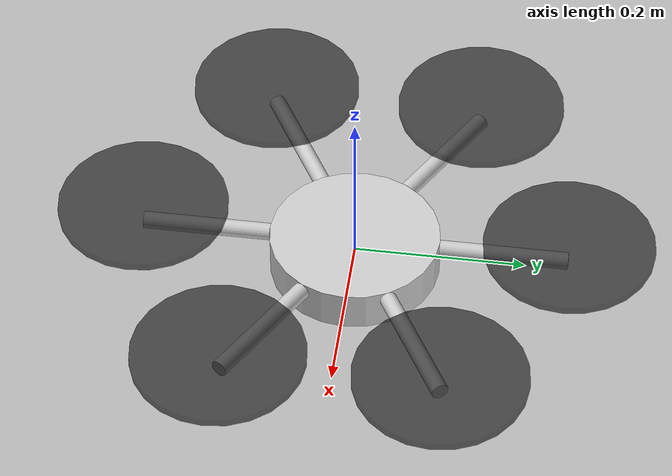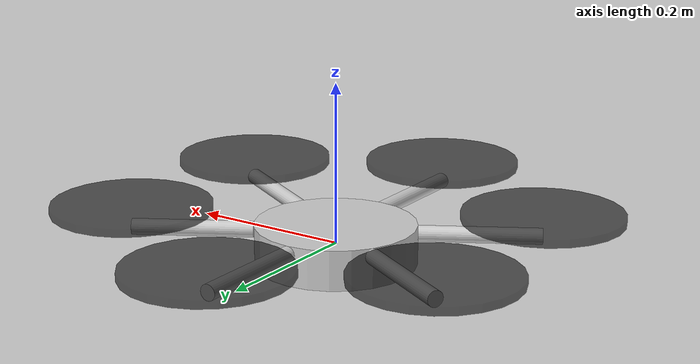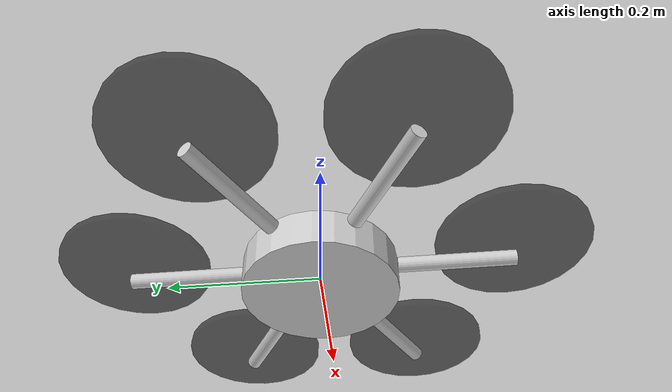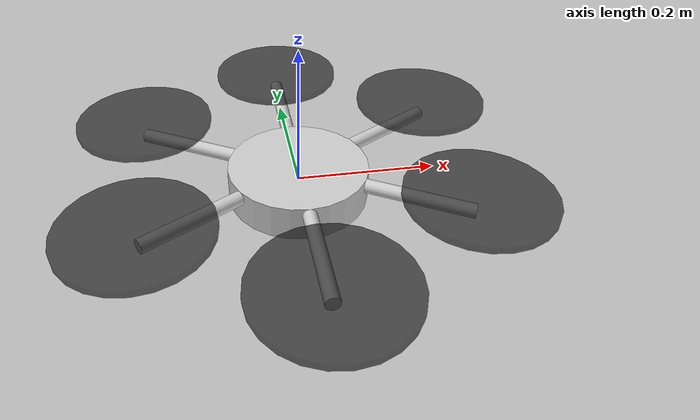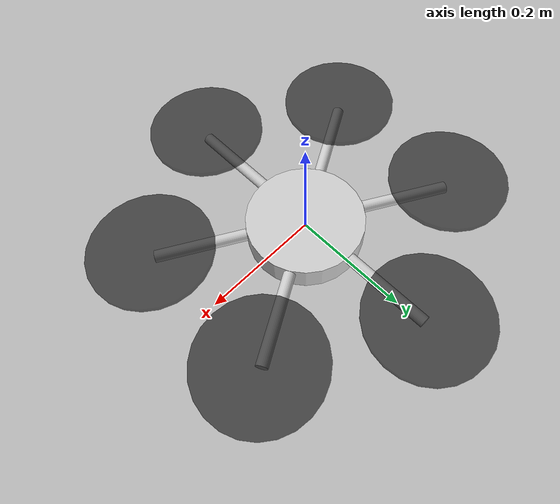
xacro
<?xml version="1.0"?>
<robot xmlns:xacro="http://wiki.ros.org/xacro" name="drone">

  <!-- properties -->
  <xacro:property name="frame_radius" value="0.1"/>
  <xacro:property name="frame_height" value="0.05"/>
  <xacro:property name="frame_mass" value="0.88"/>
  <xacro:property name="arm_radius" value="0.01"/>
  <xacro:property name="arm_length" value="0.15"/>
  <xacro:property name="arm_mass" value="0.01"/>
  <xacro:property name="propeller_radius" value="0.1"/>
  <xacro:property name="propeller_height" value="0.01"/>
  <xacro:property name="propeller_height_offset" value="0.025"/>
  <xacro:property name="propeller_mass" value="0.01"/>

  <!-- macros -->
  <xacro:macro name="box_inertial" params="x y z mass *origin">
    <inertial>
      <mass value="${mass}"/>
      <xacro:insert_block name="origin"/>
      <inertia
        ixx="${0.0833333 * mass * (y * y + z * z)}"
        ixy="0.0"
        ixz="0.0"
        iyy="${0.0833333 * mass * (x * x + z * z)}"
        iyz="0.0"
        izz="${0.0833333 * mass * (x * x + y * y)}"
      />
    </inertial>
  </xacro:macro>

  <xacro:macro name="cylinder_inertial" params="radius height mass *origin">
    <inertial>
      <mass value="${mass}"/>
      <xacro:insert_block name="origin"/>
      <inertia
        ixx="${0.0833333 * mass * (3 * radius * radius + height * height)}"
        ixy="0.0"
        ixz="0.0"
        iyy="${0.0833333 * mass * (3 * radius * radius + height * height)}"
        iyz="0.0"
        izz="${0.5 * mass * radius * radius}"
      />
    </inertial>
  </xacro:macro>

  <xacro:macro name="arm" params="i">
    <link name="arm${i}">
      <visual>
        <origin xyz="${cos((i-1)*pi/3+pi/6)*(frame_radius+arm_length/2)} ${sin((i-1)*pi/3+pi/6)*(frame_radius+arm_length/2)} ${frame_height/2-arm_radius}" rpy="0 ${pi/2} ${(i-1)*pi/3+pi/6}"/>
        <geometry>
          <cylinder radius="${arm_radius}" length="${arm_length}"/>
        </geometry>
        <material name="arm_material"/>
      </visual>
      <collision>
        <origin xyz="${cos((i-1)*pi/3+pi/6)*(frame_radius+arm_length/2)} ${sin((i-1)*pi/3+pi/6)*(frame_radius+arm_length/2)} ${frame_height/2-arm_radius}" rpy="0 ${pi/2} ${(i-1)*pi/3+pi/6}"/>
        <geometry>
          <cylinder radius="${arm_radius}" length="${arm_length}"/>
        </geometry>
      </collision>
      <xacro:cylinder_inertial radius="${arm_radius}" height="${arm_length}" mass="${arm_mass}">
        <origin xyz="${cos((i-1)*pi/3+pi/6)*(frame_radius+arm_length/2)} ${sin((i-1)*pi/3+pi/6)*(frame_radius+arm_length/2)} ${frame_height/2-arm_radius}" rpy="0 ${pi/2} ${(i-1)*pi/3+pi/6}"/>
      </xacro:cylinder_inertial>
    </link>

    <joint name="frame_arm${i}" type="fixed">
      <parent link="frame"/>
      <child link="arm${i}"/>
    </joint>

    <gazebo reference="arm${i}">
      <material>Gazebo/Grey</material>
    </gazebo>
  </xacro:macro>

  <xacro:macro name="propeller" params="i mat">
    <link name="propeller${i}">
      <visual>
        <origin xyz="0 0 0" rpy="0 0 0"/>
        <geometry>
          <cylinder radius="${propeller_radius}" length="${propeller_height}"/>
        </geometry>
        <material name="propeller_material"/>
      </visual>
      <collision>
        <origin xyz="0 0 0" rpy="0 0 0"/>
        <geometry>
          <cylinder radius="${propeller_radius}" length="${propeller_height}"/>
        </geometry>
      </collision>
      <xacro:cylinder_inertial radius="${propeller_radius}" height="${propeller_height}" mass="${propeller_mass}">
        <origin xyz="0 0 0" rpy="0 0 0"/>
      </xacro:cylinder_inertial>
    </link>

    <joint name="arm${i}_propeller${i}" type="revolute">
      <parent link="arm${i}"/>
      <child link="propeller${i}"/>
      <origin xyz="${cos((i-1)*pi/3+pi/6)*(frame_radius+arm_length)} ${sin((i-1)*pi/3+pi/6)*(frame_radius+arm_length)} ${frame_height/2-arm_radius+propeller_height_offset}" rpy="0 0 0"/>
      <axis xyz="0 0 1"/>
      <limit lower="0" upper="0" effort="0" velocity="0"/>
    </joint>

    <gazebo reference="propeller${i}">
      <material>${mat}</material>
    </gazebo>
  </xacro:macro>

  <!-- materials-->
  <material name="frame_material">
    <color rgba="1 0.2 0.2 1"/>
  </material>

  <material name="arm_material">
    <color rgba="0.8 0.8 0.8 1"/>
  </material>

  <material name="propeller_material">
    <color rgba="0 0 0 0.6"/>
  </material>

  <!-- links -->
  <link name="frame">
    <visual>
      <origin xyz="0 0 0" rpy="0 0 0"/>
      <geometry>
        <cylinder radius="${frame_radius}" length="${frame_height}"/>
      </geometry>
      <material name="frame_material">
        <color rgba="0.8 0.8 0.8 1.0"/>
      </material>
    </visual>
    <collision>
      <origin xyz="0 0 0" rpy="0 0 0"/>
      <geometry>
        <cylinder radius="${frame_radius}" length="${frame_height}"/>
      </geometry>
    </collision>
    <xacro:cylinder_inertial radius="${frame_radius}" height="${frame_height}" mass="${frame_mass}">
      <origin xyz="0 0 0" rpy="0 0 0" />
    </xacro:cylinder_inertial>
  </link>

  <xacro:arm i="1"/>
  <xacro:arm i="2"/>
  <xacro:arm i="3"/>
  <xacro:arm i="4"/>
  <xacro:arm i="5"/>
  <xacro:arm i="6"/>

  <xacro:propeller i="1" mat="Gazebo/RedTransparent"/>
  <xacro:propeller i="2" mat="Gazebo/BlackTransparent"/>
  <xacro:propeller i="3" mat="Gazebo/BlueTransparent"/>
  <xacro:propeller i="4" mat="Gazebo/BlueTransparent"/>
  <xacro:propeller i="5" mat="Gazebo/BlackTransparent"/>
  <xacro:propeller i="6" mat="Gazebo/RedTransparent"/>

  <!-- gazebo -->
  <gazebo reference="frame">
    <material>Gazebo/Orange</material>
  </gazebo>

  <gazebo>
    <plugin name="drone_plugin" filename="libgazebo_ros_drone_force.so">
      <updateRate>100</updateRate>
      <publishTf>true</publishTf>
      <rotorThrustCoeff>0.00025</rotorThrustCoeff>
      <rotorTorqueCoeff>0.0000074</rotorTorqueCoeff>
    </plugin>
  </gazebo>

</robot>
